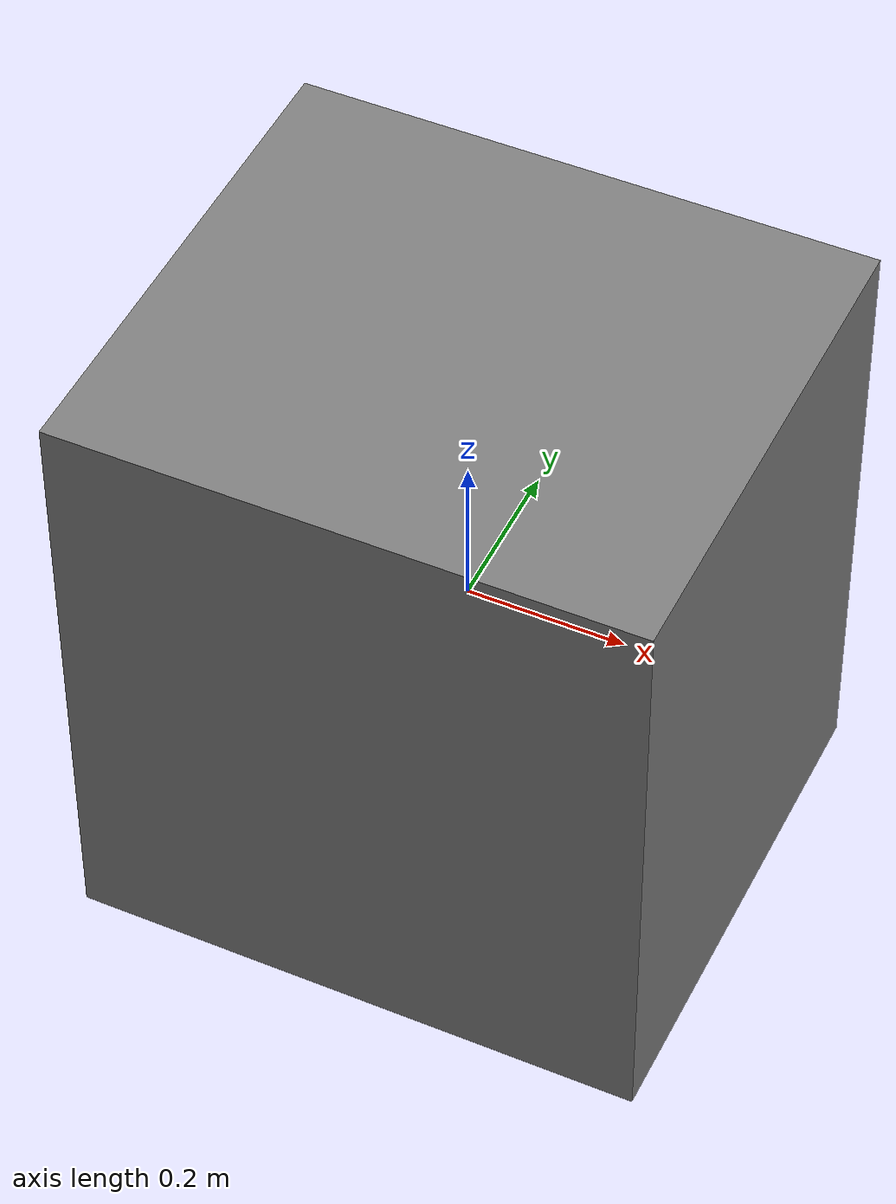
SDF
<?xml version="1.0" ?>
<sdf version="1.6">
  <model name="ur_cart">
    <static>true</static>

    <link name="ur_cart_link">

      <visual name="ur_cart_visual">
        <!-- Pose removed as it is now defined in the world file -->
        <geometry>
          <box>
            <size> 0.727075 0.644525 0.8001 </size>
          </box>
        </geometry>
        <material>
            <ambient>0.0 0.0 0.0 1.0</ambient>
            <diffuse>0.5 0.5 0.5 1.0</diffuse>
        </material>
      </visual>

      <collision name="ur_cart_collision">
        <!-- Pose removed as it is now defined in the world file -->
        <geometry>
          <box>
            <size> 0.727075 0.644525 0.8001 </size>
          </box>
        </geometry>
      </collision>

    </link>
  </model>
</sdf>
